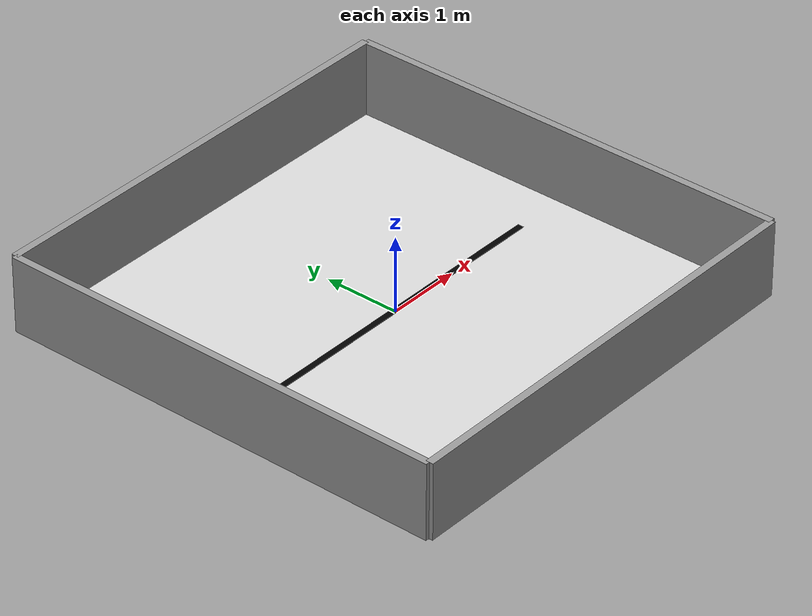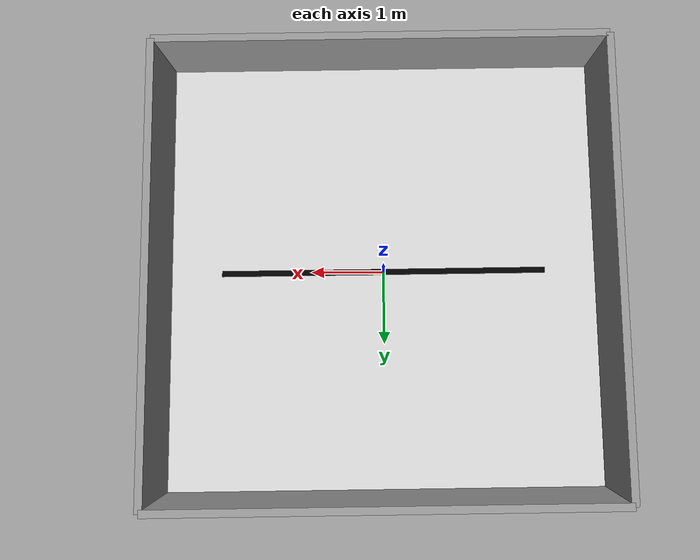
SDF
<?xml version="1.0" ?>
<sdf version="1.10">
  <world name="line_follow">

    <!-- SCENE SETTINGS -->
    <gravity>0 0 -9.81</gravity>

    <scene>
      <ambient>0.4 0.4 0.4 1</ambient>
      <background>0.7 0.8 1.0 1</background>
      <shadows>true</shadows>
    </scene>

    <!-- SUN -->
    <light name="sun" type="directional">
      <pose>0 0 10 0 0 0</pose>
      <cast_shadows>true</cast_shadows>
      <intensity>1.0</intensity>
      <direction>-0.5 0.5 -1</direction>
    </light>

    <!-- GROUND -->
    <model name="ground">
      <static>true</static>
      <link name="ground_link">
        <collision name="ground_collision">
          <geometry>
            <box>
              <size>6 6 0.02</size>
            </box>
          </geometry>
        </collision>

        <visual name="ground_visual">
          <geometry>
            <box>
              <size>6 6 0.02</size>
            </box>
          </geometry>
          <material>
            <ambient>0.85 0.85 0.85 1</ambient>
            <diffuse>0.85 0.85 0.85 1</diffuse>
          </material>
        </visual>
      </link>
    </model>

    <!-- BLACK LINE -->
    <model name="black_line">
      <static>true</static>
      <pose>0 0 0.021 0 0 0</pose>
      <link name="black_line_link">
        <visual name="black_line_visual">
          <geometry>
            <box>
              <size>4.5 0.08 0.01</size>
              <!-- length x width x height -->
            </box>
          </geometry>
          <material>
            <ambient>0 0 0 1</ambient>
            <diffuse>0 0 0 1</diffuse>
            <specular>0 0 0 1</specular>
          </material>
        </visual>
      </link>
    </model>

    <!-- NWALL -->
    <model name="north_wall">
      <static>true</static>
      <pose>0 3 0.5 0 0 0</pose>
      <link name="north_wall_link">
        <collision name="collision">
          <geometry>
            <box>
              <size>6 0.10 1.0</size>
            </box>
          </geometry>
        </collision>
        <visual name="visual">
          <geometry>
            <box>
              <size>6 0.10 1.0</size>
            </box>
          </geometry>
          <material>
            <ambient>0.6 0.6 0.6 1</ambient>
            <diffuse>0.6 0.6 0.6 1</diffuse>
          </material>
        </visual>
      </link>
    </model>

    <!-- SWALL -->
    <model name="south_wall">
      <static>true</static>
      <pose>0 -3 0.5 0 0 0</pose>
      <link name="south_wall_link">
        <collision name="collision">
          <geometry>
            <box>
              <size>6 0.10 1.0</size>
            </box>
          </geometry>
        </collision>
        <visual name="visual">
          <geometry>
            <box>
              <size>6 0.10 1.0</size>
            </box>
          </geometry>
          <material>
            <ambient>0.6 0.6 0.6 1</ambient>
            <diffuse>0.6 0.6 0.6 1</diffuse>
          </material>
        </visual>
      </link>
    </model>

    <!-- EWALL -->
    <model name="east_wall">
      <static>true</static>
      <pose>3 0 0.5 0 0 0</pose>
      <link name="east_wall_link">
        <collision name="collision">
          <geometry>
            <box>
              <size>0.10 6 1.0</size>
            </box>
          </geometry>
        </collision>
        <visual name="visual">
          <geometry>
            <box>
              <size>0.10 6 1.0</size>
            </box>
          </geometry>
          <material>
            <ambient>0.6 0.6 0.6 1</ambient>
            <diffuse>0.6 0.6 0.6 1</diffuse>
          </material>
        </visual>
      </link>
    </model>

    <!-- WWALL -->
    <model name="west_wall">
      <static>true</static>
      <pose>-3 0 0.5 0 0 0</pose>
      <link name="west_wall_link">
        <collision name="collision">
          <geometry>
            <box>
              <size>0.10 6 1.0</size>
            </box>
          </geometry>
        </collision>
        <visual name="visual">
          <geometry>
            <box>
              <size>0.10 6 1.0</size>
            </box>
          </geometry>
          <material>
            <ambient>0.6 0.6 0.6 1</ambient>
            <diffuse>0.6 0.6 0.6 1</diffuse>
          </material>
        </visual>
      </link>
    </model>

  </world>
</sdf>
